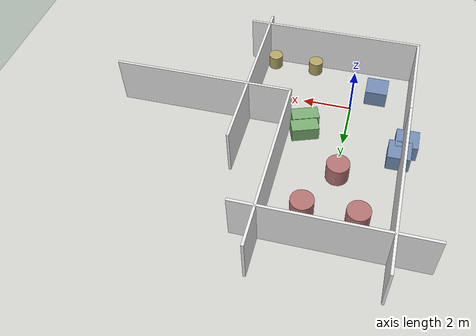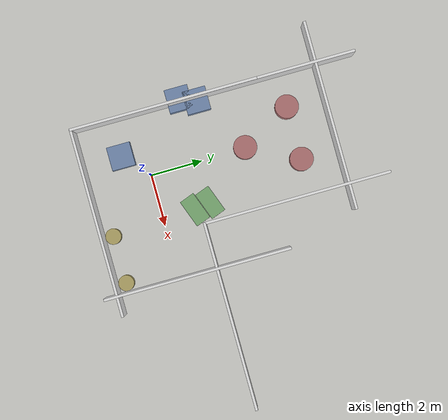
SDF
<sdf version='1.10'>
  <world name='default'>
    <physics name='1ms' type='ignored'>
      <max_step_size>0.001</max_step_size>
      <real_time_factor>1</real_time_factor>
      <real_time_update_rate>1000</real_time_update_rate>
    </physics>
    <plugin name='gz::sim::systems::Physics' filename='gz-sim-physics-system'/>
    <plugin name='gz::sim::systems::UserCommands' filename='gz-sim-user-commands-system'/>
    <plugin name='gz::sim::systems::SceneBroadcaster' filename='gz-sim-scene-broadcaster-system'/>
    <gravity>0 0 -9.8000000000000007</gravity>
    <scene>
      <ambient>0.5 0.5 0.5 1</ambient>
      <background>0.850000024 0.870000005 0.899999976 1</background>
      <shadows>true</shadows>
    </scene>
    <gui fullscreen='false'>
      <camera name='user_camera'>
        <pose>0 -8 7 0 0.59999999999999987 1.5700000000000001</pose>
      </camera>
    </gui>
    <magnetic_field>5.5644999999999998e-06 2.2875799999999999e-05 -4.2388400000000002e-05</magnetic_field>
    <atmosphere type='adiabatic'/>
    <model name='ground_plane'>
      <static>true</static>
      <link name='link'>
        <collision name='collision'>
          <geometry>
            <plane>
              <normal>0 0 1</normal>
              <size>100 100</size>
            </plane>
          </geometry>
          <surface>
            <friction>
              <ode/>
            </friction>
            <bounce/>
            <contact/>
          </surface>
        </collision>
        <visual name='visual'>
          <geometry>
            <plane>
              <normal>0 0 1</normal>
              <size>100 100</size>
            </plane>
          </geometry>
          <material>
            <ambient>0.819999993 0.819999993 0.800000012 1</ambient>
            <diffuse>0.819999993 0.819999993 0.800000012 1</diffuse>
          </material>
        </visual>
        <pose>0 0 0 0 0 0</pose>
        <inertial>
          <pose>0 0 0 0 0 0</pose>
          <mass>1</mass>
          <inertia>
            <ixx>1</ixx>
            <ixy>0</ixy>
            <ixz>0</ixz>
            <iyy>1</iyy>
            <iyz>0</iyz>
            <izz>1</izz>
          </inertia>
        </inertial>
        <enable_wind>false</enable_wind>
      </link>
      <pose>0 0 0 0 0 0</pose>
      <self_collide>false</self_collide>
    </model>
    <model name='wall_west'>
      <static>true</static>
      <pose>-2.3469500541687012 1.1982500553131104 1 0 0 0</pose>
      <link name='link'>
        <collision name='collision'>
          <geometry>
            <box>
              <size>0.10000000000000001 7.2000000000000002 2</size>
            </box>
          </geometry>
          <surface>
            <friction>
              <ode/>
            </friction>
            <bounce/>
            <contact/>
          </surface>
        </collision>
        <visual name='visual'>
          <geometry>
            <box>
              <size>0.10000000000000001 7.2000000000000002 2</size>
            </box>
          </geometry>
          <material>
            <ambient>0.920000017 0.920000017 0.920000017 1</ambient>
            <diffuse>0.920000017 0.920000017 0.920000017 1</diffuse>
          </material>
        </visual>
        <pose>0 0 0 0 0 0</pose>
        <inertial>
          <pose>0 0 0 0 0 0</pose>
          <mass>1</mass>
          <inertia>
            <ixx>1</ixx>
            <ixy>0</ixy>
            <ixz>0</ixz>
            <iyy>1</iyy>
            <iyz>0</iyz>
            <izz>1</izz>
          </inertia>
        </inertial>
        <enable_wind>false</enable_wind>
      </link>
      <self_collide>false</self_collide>
    </model>
    <model name='wall_east'>
      <static>true</static>
      <pose>4.0518999099731445 0.73290449380874634 1 0 0 0</pose>
      <link name='link'>
        <collision name='collision'>
          <geometry>
            <box>
              <size>0.10000000000000001 7.2000000000000002 2</size>
            </box>
          </geometry>
          <surface>
            <friction>
              <ode/>
            </friction>
            <bounce/>
            <contact/>
          </surface>
        </collision>
        <visual name='visual'>
          <geometry>
            <box>
              <size>0.10000000000000001 7.2000000000000002 2</size>
            </box>
          </geometry>
          <material>
            <ambient>0.920000017 0.920000017 0.920000017 1</ambient>
            <diffuse>0.920000017 0.920000017 0.920000017 1</diffuse>
          </material>
        </visual>
        <pose>0 0 0 0 0 0</pose>
        <inertial>
          <pose>0 0 0 0 0 0</pose>
          <mass>1</mass>
          <inertia>
            <ixx>1</ixx>
            <ixy>0</ixy>
            <ixz>0</ixz>
            <iyy>1</iyy>
            <iyz>0</iyz>
            <izz>1</izz>
          </inertia>
        </inertial>
        <enable_wind>false</enable_wind>
      </link>
      <self_collide>false</self_collide>
    </model>
    <model name='wall_south'>
      <static>true</static>
      <pose>1.2398861646652222 -2.3577754497528076 1 0 0 1.5708000357176291</pose>
      <link name='link'>
        <collision name='collision'>
          <geometry>
            <box>
              <size>0.10000000000000001 7.2000000000000002 2</size>
            </box>
          </geometry>
          <surface>
            <friction>
              <ode/>
            </friction>
            <bounce/>
            <contact/>
          </surface>
        </collision>
        <visual name='visual'>
          <geometry>
            <box>
              <size>0.10000000000000001 7.2000000000000002 2</size>
            </box>
          </geometry>
          <material>
            <ambient>0.920000017 0.920000017 0.920000017 1</ambient>
            <diffuse>0.920000017 0.920000017 0.920000017 1</diffuse>
          </material>
        </visual>
        <pose>0 0 0 0 0 0</pose>
        <inertial>
          <pose>0 0 0 0 0 0</pose>
          <mass>1</mass>
          <inertia>
            <ixx>1</ixx>
            <ixy>0</ixy>
            <ixz>0</ixz>
            <iyy>1</iyy>
            <iyz>0</iyz>
            <izz>1</izz>
          </inertia>
        </inertial>
        <enable_wind>false</enable_wind>
      </link>
      <self_collide>false</self_collide>
    </model>
    <model name='wall_north'>
      <static>true</static>
      <pose>5.8879075050354004 1.4826513528823853 1 0 0 1.5708000357176291</pose>
      <link name='link'>
        <collision name='collision'>
          <geometry>
            <box>
              <size>0.10000000000000001 7.2000000000000002 2</size>
            </box>
          </geometry>
          <surface>
            <friction>
              <ode/>
            </friction>
            <bounce/>
            <contact/>
          </surface>
        </collision>
        <visual name='visual'>
          <geometry>
            <box>
              <size>0.10000000000000001 7.2000000000000002 2</size>
            </box>
          </geometry>
          <material>
            <ambient>0.920000017 0.920000017 0.920000017 1</ambient>
            <diffuse>0.920000017 0.920000017 0.920000017 1</diffuse>
          </material>
        </visual>
        <pose>0 0 0 0 0 0</pose>
        <inertial>
          <pose>0 0 0 0 0 0</pose>
          <mass>1</mass>
          <inertia>
            <ixx>1</ixx>
            <ixy>0</ixy>
            <ixz>0</ixz>
            <iyy>1</iyy>
            <iyz>0</iyz>
            <izz>1</izz>
          </inertia>
        </inertial>
        <enable_wind>false</enable_wind>
      </link>
      <self_collide>false</self_collide>
    </model>
    <model name='center_box'>
      <static>true</static>
      <pose>-0.96557718515396118 -0.88706701993942261 0.34999999403953552 0 0 0</pose>
      <link name='link'>
        <collision name='collision'>
          <geometry>
            <box>
              <size>0.90000000000000002 0.90000000000000002 0.69999999999999996</size>
            </box>
          </geometry>
          <surface>
            <friction>
              <ode/>
            </friction>
            <bounce/>
            <contact/>
          </surface>
        </collision>
        <visual name='visual'>
          <geometry>
            <box>
              <size>0.90000000000000002 0.90000000000000002 0.69999999999999996</size>
            </box>
          </geometry>
          <material>
            <ambient>0.449999988 0.550000012 0.699999988 1</ambient>
            <diffuse>0.449999988 0.550000012 0.699999988 1</diffuse>
          </material>
        </visual>
        <pose>0 0 0 0 0 0</pose>
        <inertial>
          <pose>0 0 0 0 0 0</pose>
          <mass>1</mass>
          <inertia>
            <ixx>1</ixx>
            <ixy>0</ixy>
            <ixz>0</ixz>
            <iyy>1</iyy>
            <iyz>0</iyz>
            <izz>1</izz>
          </inertia>
        </inertial>
        <enable_wind>false</enable_wind>
      </link>
      <self_collide>false</self_collide>
    </model>
    <model name='north_cylinder'>
      <static>true</static>
      <pose>0.96130961179733276 5.6382198333740234 0.40000000596046448 0 0 0</pose>
      <link name='link'>
        <collision name='collision'>
          <geometry>
            <cylinder>
              <radius>0.45000000000000001</radius>
              <length>0.80000000000000004</length>
            </cylinder>
          </geometry>
          <surface>
            <friction>
              <ode/>
            </friction>
            <bounce/>
            <contact/>
          </surface>
        </collision>
        <visual name='visual'>
          <geometry>
            <cylinder>
              <radius>0.45000000000000001</radius>
              <length>0.80000000000000004</length>
            </cylinder>
          </geometry>
          <material>
            <ambient>0.699999988 0.449999988 0.449999988 1</ambient>
            <diffuse>0.699999988 0.449999988 0.449999988 1</diffuse>
          </material>
        </visual>
        <pose>0 0 0 0 0 0</pose>
        <inertial>
          <pose>0 0 0 0 0 0</pose>
          <mass>1</mass>
          <inertia>
            <ixx>1</ixx>
            <ixy>0</ixy>
            <ixz>0</ixz>
            <iyy>1</iyy>
            <iyz>0</iyz>
            <izz>1</izz>
          </inertia>
        </inertial>
        <enable_wind>false</enable_wind>
      </link>
      <self_collide>false</self_collide>
    </model>
    <model name='southwest_box'>
      <static>true</static>
      <pose>1.7217099666595459 1.2629599571228027 0.30000001192092896 0 0 0.34999998716675662</pose>
      <link name='link'>
        <collision name='collision'>
          <geometry>
            <box>
              <size>1.1000000000000001 0.59999999999999998 0.59999999999999998</size>
            </box>
          </geometry>
          <surface>
            <friction>
              <ode/>
            </friction>
            <bounce/>
            <contact/>
          </surface>
        </collision>
        <visual name='visual'>
          <geometry>
            <box>
              <size>1.1000000000000001 0.59999999999999998 0.59999999999999998</size>
            </box>
          </geometry>
          <material>
            <ambient>0.479999989 0.680000007 0.449999988 1</ambient>
            <diffuse>0.479999989 0.680000007 0.449999988 1</diffuse>
          </material>
        </visual>
        <pose>0 0 0 0 0 0</pose>
        <inertial>
          <pose>0 0 0 0 0 0</pose>
          <mass>1</mass>
          <inertia>
            <ixx>1</ixx>
            <ixy>0</ixy>
            <ixz>0</ixz>
            <iyy>1</iyy>
            <iyz>0</iyz>
            <izz>1</izz>
          </inertia>
        </inertial>
        <enable_wind>false</enable_wind>
      </link>
      <self_collide>false</self_collide>
    </model>
    <model name='southeast_cylinder'>
      <static>true</static>
      <pose>3.6871645450592041 -1.9790500402450562 0.30000001192092896 0 0 0</pose>
      <link name='link'>
        <collision name='collision'>
          <geometry>
            <cylinder>
              <radius>0.29999999999999999</radius>
              <length>0.59999999999999998</length>
            </cylinder>
          </geometry>
          <surface>
            <friction>
              <ode/>
            </friction>
            <bounce/>
            <contact/>
          </surface>
        </collision>
        <visual name='visual'>
          <geometry>
            <cylinder>
              <radius>0.29999999999999999</radius>
              <length>0.59999999999999998</length>
            </cylinder>
          </geometry>
          <material>
            <ambient>0.699999988 0.649999976 0.400000006 1</ambient>
            <diffuse>0.699999988 0.649999976 0.400000006 1</diffuse>
          </material>
        </visual>
        <pose>0 0 0 0 0 0</pose>
        <inertial>
          <pose>0 0 0 0 0 0</pose>
          <mass>1</mass>
          <inertia>
            <ixx>1</ixx>
            <ixy>0</ixy>
            <ixz>0</ixz>
            <iyy>1</iyy>
            <iyz>0</iyz>
            <izz>1</izz>
          </inertia>
        </inertial>
        <enable_wind>false</enable_wind>
      </link>
      <self_collide>false</self_collide>
    </model>
    <model name='wall_east_1'>
      <static>true</static>
      <pose>2.3158322687035509 5.0328022084944486 1 0 0 0</pose>
      <link name='link'>
        <collision name='collision'>
          <geometry>
            <box>
              <size>0.10000000000000001 7.2000000000000002 2</size>
            </box>
          </geometry>
          <surface>
            <friction>
              <ode/>
            </friction>
            <bounce/>
            <contact/>
          </surface>
        </collision>
        <visual name='visual'>
          <geometry>
            <box>
              <size>0.10000000000000001 7.2000000000000002 2</size>
            </box>
          </geometry>
          <material>
            <ambient>0.920000017 0.920000017 0.920000017 1</ambient>
            <diffuse>0.920000017 0.920000017 0.920000017 1</diffuse>
          </material>
        </visual>
      </link>
      <self_collide>false</self_collide>
    </model>
    <model name='wall_west_1'>
      <static>true</static>
      <pose>-2.3446308140540091 4.9621907282312083 1 0 0 0</pose>
      <link name='link'>
        <collision name='collision'>
          <geometry>
            <box>
              <size>0.10000000000000001 7.2000000000000002 2</size>
            </box>
          </geometry>
          <surface>
            <friction>
              <ode/>
            </friction>
            <bounce/>
            <contact/>
          </surface>
        </collision>
        <visual name='visual'>
          <geometry>
            <box>
              <size>0.10000000000000001 7.2000000000000002 2</size>
            </box>
          </geometry>
          <material>
            <ambient>0.920000017 0.920000017 0.920000017 1</ambient>
            <diffuse>0.920000017 0.920000017 0.920000017 1</diffuse>
          </material>
        </visual>
      </link>
      <self_collide>false</self_collide>
    </model>
    <model name='wall_north_1'>
      <static>true</static>
      <pose>-0.27966810097135997 7.0381450517392485 1 0 0 1.5707999672671704</pose>
      <link name='link'>
        <collision name='collision'>
          <geometry>
            <box>
              <size>0.10000000000000001 7.2000000000000002 2</size>
            </box>
          </geometry>
          <surface>
            <friction>
              <ode/>
            </friction>
            <bounce/>
            <contact/>
          </surface>
        </collision>
        <visual name='visual'>
          <geometry>
            <box>
              <size>0.10000000000000001 7.2000000000000002 2</size>
            </box>
          </geometry>
          <material>
            <ambient>0.920000017 0.920000017 0.920000017 1</ambient>
            <diffuse>0.920000017 0.920000017 0.920000017 1</diffuse>
          </material>
        </visual>
      </link>
      <self_collide>false</self_collide>
    </model>
    <model name='north_cylinder_1'>
      <static>true</static>
      <pose>-1.0848541023332094 5.6309408325331978 0.40000000596046448 0 0 0</pose>
      <link name='link'>
        <collision name='collision'>
          <geometry>
            <cylinder>
              <radius>0.45000000000000001</radius>
              <length>0.80000000000000004</length>
            </cylinder>
          </geometry>
          <surface>
            <friction>
              <ode/>
            </friction>
            <bounce/>
            <contact/>
          </surface>
        </collision>
        <visual name='visual'>
          <geometry>
            <cylinder>
              <radius>0.45000000000000001</radius>
              <length>0.80000000000000004</length>
            </cylinder>
          </geometry>
          <material>
            <ambient>0.699999988 0.449999988 0.449999988 1</ambient>
            <diffuse>0.699999988 0.449999988 0.449999988 1</diffuse>
          </material>
        </visual>
      </link>
      <self_collide>false</self_collide>
    </model>
    <model name='north_cylinder_2'>
      <static>true</static>
      <pose>-0.03267096810679071 3.7131116692011044 0.40000000596046448 0 0 0</pose>
      <link name='link'>
        <collision name='collision'>
          <geometry>
            <cylinder>
              <radius>0.45000000000000001</radius>
              <length>0.80000000000000004</length>
            </cylinder>
          </geometry>
          <surface>
            <friction>
              <ode/>
            </friction>
            <bounce/>
            <contact/>
          </surface>
        </collision>
        <visual name='visual'>
          <geometry>
            <cylinder>
              <radius>0.45000000000000001</radius>
              <length>0.80000000000000004</length>
            </cylinder>
          </geometry>
          <material>
            <ambient>0.699999988 0.449999988 0.449999988 1</ambient>
            <diffuse>0.699999988 0.449999988 0.449999988 1</diffuse>
          </material>
        </visual>
      </link>
      <self_collide>false</self_collide>
    </model>
    <model name='southwest_box_1'>
      <static>true</static>
      <pose>1.6091375460835848 1.8804164822760217 0.30000001192092896 0 0 0.34999999303646867</pose>
      <link name='link'>
        <collision name='collision'>
          <geometry>
            <box>
              <size>1.1000000000000001 0.59999999999999998 0.59999999999999998</size>
            </box>
          </geometry>
          <surface>
            <friction>
              <ode/>
            </friction>
            <bounce/>
            <contact/>
          </surface>
        </collision>
        <visual name='visual'>
          <geometry>
            <box>
              <size>1.1000000000000001 0.59999999999999998 0.59999999999999998</size>
            </box>
          </geometry>
          <material>
            <ambient>0.479999989 0.680000007 0.449999988 1</ambient>
            <diffuse>0.479999989 0.680000007 0.449999988 1</diffuse>
          </material>
        </visual>
      </link>
      <self_collide>false</self_collide>
    </model>
    <model name='center_box_1'>
      <static>true</static>
      <pose>-2.2300859962067401 2.4185535428674698 0.34999999403953552 0 0 0</pose>
      <link name='link'>
        <collision name='collision'>
          <geometry>
            <box>
              <size>0.90000000000000002 0.90000000000000002 0.69999999999999996</size>
            </box>
          </geometry>
          <surface>
            <friction>
              <ode/>
            </friction>
            <bounce/>
            <contact/>
          </surface>
        </collision>
        <visual name='visual'>
          <geometry>
            <box>
              <size>0.90000000000000002 0.90000000000000002 0.69999999999999996</size>
            </box>
          </geometry>
          <material>
            <ambient>0.449999988 0.550000012 0.699999988 1</ambient>
            <diffuse>0.449999988 0.550000012 0.699999988 1</diffuse>
          </material>
        </visual>
      </link>
      <self_collide>false</self_collide>
    </model>
    <model name='center_box_1_1'>
      <static>true</static>
      <pose>-2.4634840136866818 1.7829857582614461 0.34999999403953552 0 0 0</pose>
      <link name='link'>
        <collision name='collision'>
          <geometry>
            <box>
              <size>0.90000000000000002 0.90000000000000002 0.69999999999999996</size>
            </box>
          </geometry>
          <surface>
            <friction>
              <ode/>
            </friction>
            <bounce/>
            <contact/>
          </surface>
        </collision>
        <visual name='visual'>
          <geometry>
            <box>
              <size>0.90000000000000002 0.90000000000000002 0.69999999999999996</size>
            </box>
          </geometry>
          <material>
            <ambient>0.449999988 0.550000012 0.699999988 1</ambient>
            <diffuse>0.449999988 0.550000012 0.699999988 1</diffuse>
          </material>
        </visual>
      </link>
      <self_collide>false</self_collide>
    </model>
    <model name='southeast_cylinder_1'>
      <static>true</static>
      <pose>1.8647654657721751 -1.9786612212150723 0.30000001192092896 0 0 0</pose>
      <link name='link'>
        <collision name='collision'>
          <geometry>
            <cylinder>
              <radius>0.29999999999999999</radius>
              <length>0.59999999999999998</length>
            </cylinder>
          </geometry>
          <surface>
            <friction>
              <ode/>
            </friction>
            <bounce/>
            <contact/>
          </surface>
        </collision>
        <visual name='visual'>
          <geometry>
            <cylinder>
              <radius>0.29999999999999999</radius>
              <length>0.59999999999999998</length>
            </cylinder>
          </geometry>
          <material>
            <ambient>0.699999988 0.649999976 0.400000006 1</ambient>
            <diffuse>0.699999988 0.649999976 0.400000006 1</diffuse>
          </material>
        </visual>
      </link>
      <self_collide>false</self_collide>
    </model>
    <light name='sun' type='directional'>
      <pose>0 0 10 0 0 0</pose>
      <cast_shadows>true</cast_shadows>
      <intensity>1</intensity>
      <direction>-0.5 0.10000000000000001 -0.90000000000000002</direction>
      <diffuse>0.800000012 0.800000012 0.800000012 1</diffuse>
      <specular>0.200000003 0.200000003 0.200000003 1</specular>
      <attenuation>
        <range>1000</range>
        <linear>0.01</linear>
        <constant>0.90000000000000002</constant>
        <quadratic>0.001</quadratic>
      </attenuation>
      <spot>
        <inner_angle>0</inner_angle>
        <outer_angle>0</outer_angle>
        <falloff>0</falloff>
      </spot>
    </light>
  </world>
</sdf>
